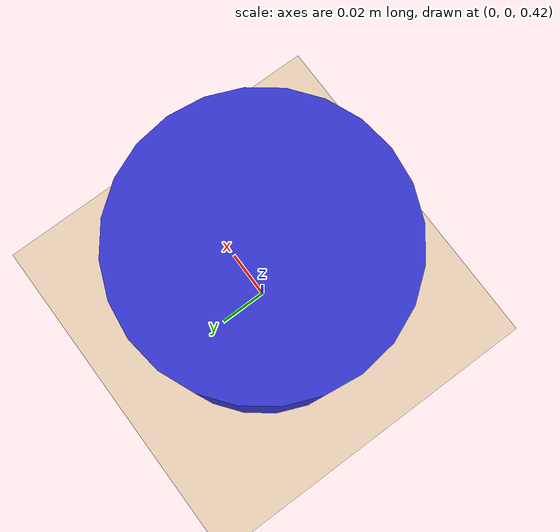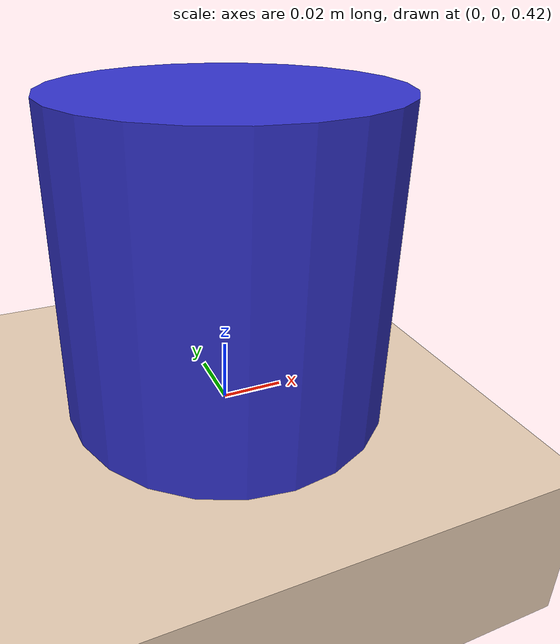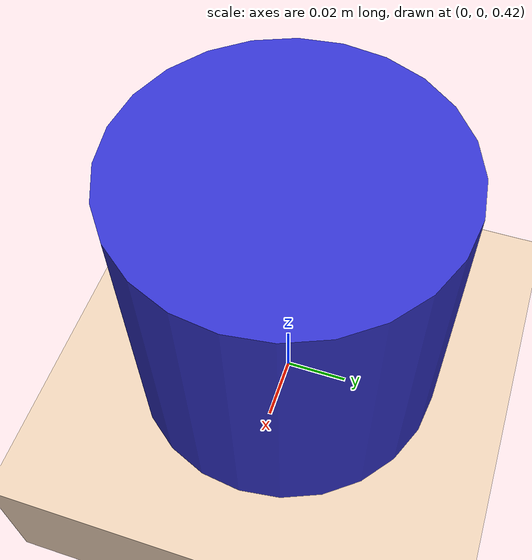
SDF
<?xml version="1.0" ?>
<sdf version="1.9">
  <world name="table_with_cylinder_world">

    <!-- Sol (ground plane) -->
    <model name="ground_plane">
      <static>true</static>
      <pose>0 0 0 0 0 0</pose>
      <link name="ground_link">
        <collision name="collision">
          <geometry>
            <plane>
              <normal>0 0 1</normal>
              <size>50 50</size>
            </plane>
          </geometry>
          <drake:proximity_properties>
            <drake:mu_dynamic>0.5</drake:mu_dynamic>
            <drake:mu_static>0.5</drake:mu_static>
          </drake:proximity_properties>
        </collision>
        <visual name="visual">
          <geometry>
            <plane>
              <size>50 50</size>
            </plane>
          </geometry>
          <material>
            <diffuse>0.7 0.7 0.7 1.0</diffuse>
          </material>
        </visual>
      </link>
    </model>

    <!-- Table -->
    <model name="long_table">
      <static>true</static>
      <pose>0 0 0.4 0 0 0</pose>
      <link name="table_link">
        <collision name="collision">
          <geometry>
            <box>
              <size>2.0 0.6 0.05</size>
            </box>
          </geometry>
          <drake:proximity_properties>
            <drake:mu_dynamic>0.4</drake:mu_dynamic>
            <drake:mu_static>0.4</drake:mu_static>
          </drake:proximity_properties>
        </collision>
        <visual name="visual">
          <geometry>
            <box>
              <size>2.0 0.6 0.05</size>
            </box>
          </geometry>
          <material>
            <diffuse>0.9 0.8 0.7 1.0</diffuse>
          </material>
        </visual>
      </link>
    </model>

    <!-- Cylindre posé sur la table -->
    <model name="blue_cylinder">
      <pose>0 0 0.47 0 0 0</pose> <!-- légèrement au-dessus de la table -->
      <link name="cylinder_link">
        <inertial>
          <mass>0.1</mass>
          <inertia>
            <ixx>1e-4</ixx>
            <iyy>1e-4</iyy>
            <izz>2e-4</izz>
          </inertia>
        </inertial>
        <collision name="collision">
          <geometry>
            <cylinder>
              <radius>0.05</radius>
              <length>0.1</length>
            </cylinder>
          </geometry>
          <drake:proximity_properties>
            <drake:mu_dynamic>0.5</drake:mu_dynamic>
            <drake:mu_static>0.5</drake:mu_static>
          </drake:proximity_properties>
        </collision>
        <visual name="visual">
          <geometry>
            <cylinder>
              <radius>0.05</radius>
              <length>0.1</length>
            </cylinder>
          </geometry>
          <material>
            <diffuse>0.2 0.2 0.8 1.0</diffuse>
          </material>
        </visual>
      </link>
    </model>

  </world>
</sdf>
